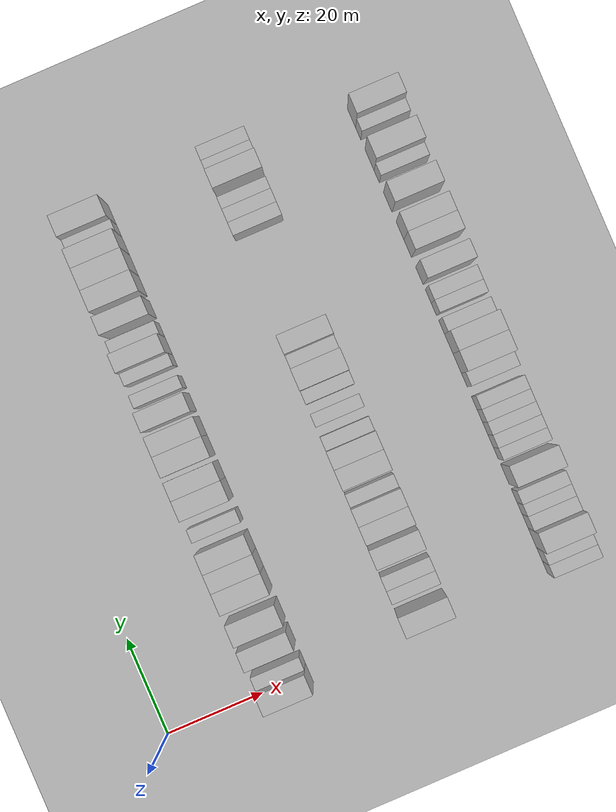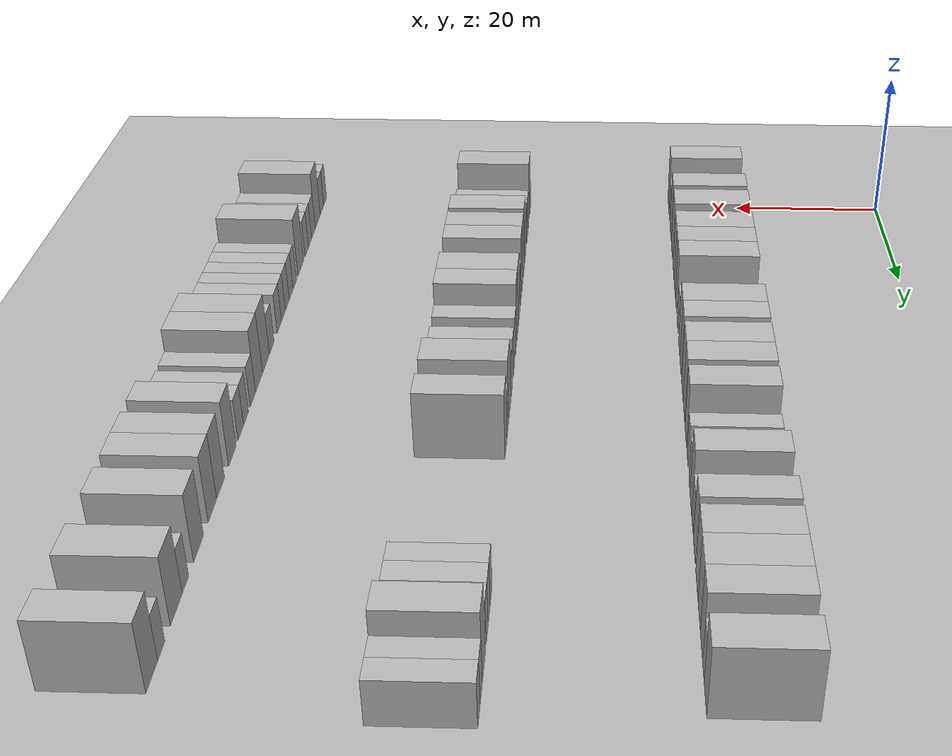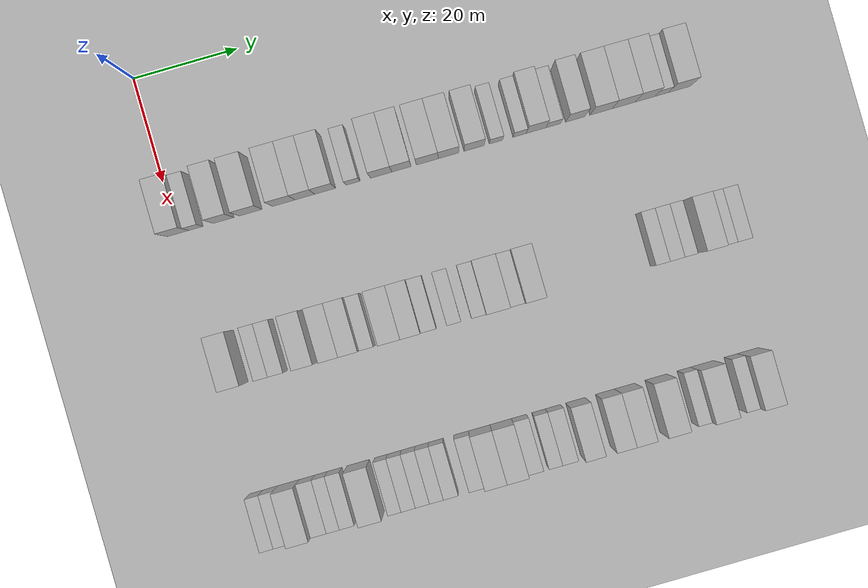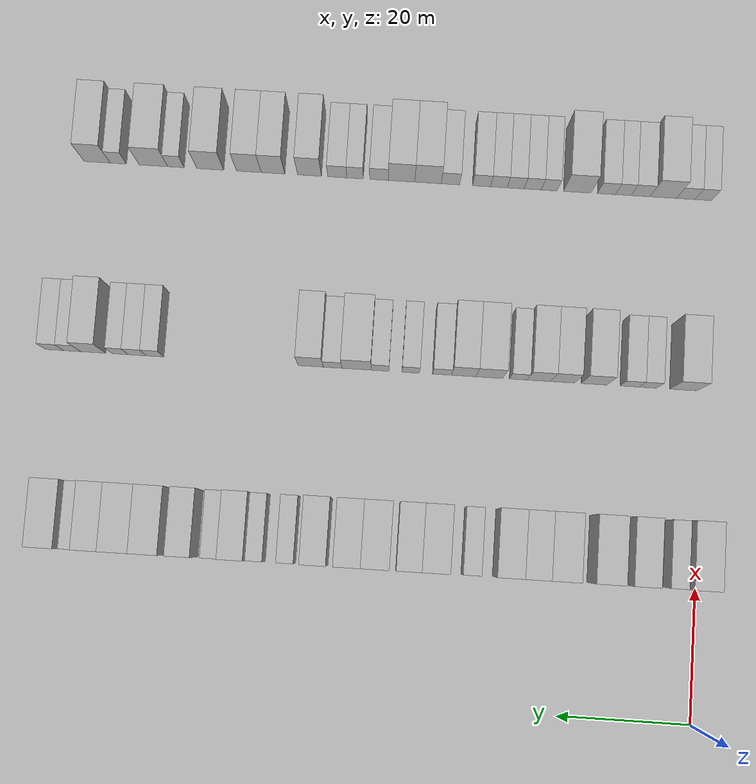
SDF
<sdf version="1.6">
 <world name="default">
  <include><name>ground_plane_1</name><uri>model://HANNAS_ground_plane</uri></include>
  <include>
   <name>ground_plane_2</name>
   <uri>model://HANNAS_ground_plane</uri>
   <pose>100 0 0  0 0 0</pose>
  </include>
  <model name="building_68">
   <static>1</static>
   <pose>25.0000 0.2181 0 0.000000 0.000000 0.000000</pose>
   <link name="link">
    <pose>0 0 4.50 0 0 0</pose>
    <collision name="collision"><geometry><box><size>10.0000 4.1541 9.0000</size></box></geometry></collision>
    <visual name="visual">
     <cast_shadows>0</cast_shadows>
     <geometry><box><size>10.0000 4.1541 9.0000</size></box></geometry>
     <material>
      <script>
       <uri>model://HANNAS_wall/materials/scripts</uri>
       <uri>model://HANNAS_wall/materials/textures</uri>
       <name>vrc/HANNAS_wall</name>
      </script>
     </material>
    </visual>
   </link>
  </model>
  <model name="building_69">
   <static>1</static>
   <pose>25.0000 3.6451 0 0.000000 0.000000 0.000000</pose>
   <link name="link">
    <pose>0 0 3.00 0 0 0</pose>
    <collision name="collision"><geometry><box><size>10.0000 2.6998 6.0000</size></box></geometry></collision>
    <visual name="visual">
     <cast_shadows>0</cast_shadows>
     <geometry><box><size>10.0000 2.6998 6.0000</size></box></geometry>
     <material>
      <script>
       <uri>model://HANNAS_wall/materials/scripts</uri>
       <uri>model://HANNAS_wall/materials/textures</uri>
       <name>vrc/HANNAS_wall</name>
      </script>
     </material>
    </visual>
   </link>
  </model>
  <model name="building_70">
   <static>1</static>
   <pose>25.0000 8.9769 0 0.000000 0.000000 0.000000</pose>
   <link name="link">
    <pose>0 0 4.50 0 0 0</pose>
    <collision name="collision"><geometry><box><size>10.0000 3.9638 9.0000</size></box></geometry></collision>
    <visual name="visual">
     <cast_shadows>0</cast_shadows>
     <geometry><box><size>10.0000 3.9638 9.0000</size></box></geometry>
     <material>
      <script>
       <uri>model://HANNAS_wall/materials/scripts</uri>
       <uri>model://HANNAS_wall/materials/textures</uri>
       <name>vrc/HANNAS_wall</name>
      </script>
     </material>
    </visual>
   </link>
  </model>
  <model name="building_71">
   <static>1</static>
   <pose>25.0000 14.1702 0 0.000000 0.000000 0.000000</pose>
   <link name="link">
    <pose>0 0 4.50 0 0 0</pose>
    <collision name="collision"><geometry><box><size>10.0000 4.4229 9.0000</size></box></geometry></collision>
    <visual name="visual">
     <cast_shadows>0</cast_shadows>
     <geometry><box><size>10.0000 4.4229 9.0000</size></box></geometry>
     <material>
      <script>
       <uri>model://HANNAS_wall/materials/scripts</uri>
       <uri>model://HANNAS_wall/materials/textures</uri>
       <name>vrc/HANNAS_wall</name>
      </script>
     </material>
    </visual>
   </link>
  </model>
  <model name="building_72">
   <static>1</static>
   <pose>25.0000 20.5548 0 0.000000 0.000000 0.000000</pose>
   <link name="link">
    <pose>0 0 4.50 0 0 0</pose>
    <collision name="collision"><geometry><box><size>10.0000 4.3463 9.0000</size></box></geometry></collision>
    <visual name="visual">
     <cast_shadows>0</cast_shadows>
     <geometry><box><size>10.0000 4.3463 9.0000</size></box></geometry>
     <material>
      <script>
       <uri>model://HANNAS_wall/materials/scripts</uri>
       <uri>model://HANNAS_wall/materials/textures</uri>
       <name>vrc/HANNAS_wall</name>
      </script>
     </material>
    </visual>
   </link>
  </model>
  <model name="building_73">
   <static>1</static>
   <pose>25.0000 24.6365 0 0.000000 0.000000 0.000000</pose>
   <link name="link">
    <pose>0 0 4.50 0 0 0</pose>
    <collision name="collision"><geometry><box><size>10.0000 3.8170 9.0000</size></box></geometry></collision>
    <visual name="visual">
     <cast_shadows>0</cast_shadows>
     <geometry><box><size>10.0000 3.8170 9.0000</size></box></geometry>
     <material>
      <script>
       <uri>model://HANNAS_wall/materials/scripts</uri>
       <uri>model://HANNAS_wall/materials/textures</uri>
       <name>vrc/HANNAS_wall</name>
      </script>
     </material>
    </visual>
   </link>
  </model>
  <model name="building_74">
   <static>1</static>
   <pose>25.0000 28.5519 0 0.000000 0.000000 0.000000</pose>
   <link name="link">
    <pose>0 0 4.50 0 0 0</pose>
    <collision name="collision"><geometry><box><size>10.0000 4.0139 9.0000</size></box></geometry></collision>
    <visual name="visual">
     <cast_shadows>0</cast_shadows>
     <geometry><box><size>10.0000 4.0139 9.0000</size></box></geometry>
     <material>
      <script>
       <uri>model://HANNAS_wall/materials/scripts</uri>
       <uri>model://HANNAS_wall/materials/textures</uri>
       <name>vrc/HANNAS_wall</name>
      </script>
     </material>
    </visual>
   </link>
  </model>
  <model name="building_75">
   <static>1</static>
   <pose>25.0000 33.9201 0 0.000000 0.000000 0.000000</pose>
   <link name="link">
    <pose>0 0 3.00 0 0 0</pose>
    <collision name="collision"><geometry><box><size>10.0000 2.7224 6.0000</size></box></geometry></collision>
    <visual name="visual">
     <cast_shadows>0</cast_shadows>
     <geometry><box><size>10.0000 2.7224 6.0000</size></box></geometry>
     <material>
      <script>
       <uri>model://HANNAS_wall/materials/scripts</uri>
       <uri>model://HANNAS_wall/materials/textures</uri>
       <name>vrc/HANNAS_wall</name>
      </script>
     </material>
    </visual>
   </link>
  </model>
  <model name="building_76">
   <static>1</static>
   <pose>25.0000 39.3360 0 0.000000 0.000000 0.000000</pose>
   <link name="link">
    <pose>0 0 4.50 0 0 0</pose>
    <collision name="collision"><geometry><box><size>10.0000 4.1094 9.0000</size></box></geometry></collision>
    <visual name="visual">
     <cast_shadows>0</cast_shadows>
     <geometry><box><size>10.0000 4.1094 9.0000</size></box></geometry>
     <material>
      <script>
       <uri>model://HANNAS_wall/materials/scripts</uri>
       <uri>model://HANNAS_wall/materials/textures</uri>
       <name>vrc/HANNAS_wall</name>
      </script>
     </material>
    </visual>
   </link>
  </model>
  <model name="building_77">
   <static>1</static>
   <pose>25.0000 43.2441 0 0.000000 0.000000 0.000000</pose>
   <link name="link">
    <pose>0 0 4.50 0 0 0</pose>
    <collision name="collision"><geometry><box><size>10.0000 3.7069 9.0000</size></box></geometry></collision>
    <visual name="visual">
     <cast_shadows>0</cast_shadows>
     <geometry><box><size>10.0000 3.7069 9.0000</size></box></geometry>
     <material>
      <script>
       <uri>model://HANNAS_wall/materials/scripts</uri>
       <uri>model://HANNAS_wall/materials/textures</uri>
       <name>vrc/HANNAS_wall</name>
      </script>
     </material>
    </visual>
   </link>
  </model>
  <model name="building_78">
   <static>1</static>
   <pose>25.0000 48.1934 0 0.000000 0.000000 0.000000</pose>
   <link name="link">
    <pose>0 0 4.50 0 0 0</pose>
    <collision name="collision"><geometry><box><size>10.0000 4.1918 9.0000</size></box></geometry></collision>
    <visual name="visual">
     <cast_shadows>0</cast_shadows>
     <geometry><box><size>10.0000 4.1918 9.0000</size></box></geometry>
     <material>
      <script>
       <uri>model://HANNAS_wall/materials/scripts</uri>
       <uri>model://HANNAS_wall/materials/textures</uri>
       <name>vrc/HANNAS_wall</name>
      </script>
     </material>
    </visual>
   </link>
  </model>
  <model name="building_79">
   <static>1</static>
   <pose>25.0000 52.2779 0 0.000000 0.000000 0.000000</pose>
   <link name="link">
    <pose>0 0 4.50 0 0 0</pose>
    <collision name="collision"><geometry><box><size>10.0000 3.9772 9.0000</size></box></geometry></collision>
    <visual name="visual">
     <cast_shadows>0</cast_shadows>
     <geometry><box><size>10.0000 3.9772 9.0000</size></box></geometry>
     <material>
      <script>
       <uri>model://HANNAS_wall/materials/scripts</uri>
       <uri>model://HANNAS_wall/materials/textures</uri>
       <name>vrc/HANNAS_wall</name>
      </script>
     </material>
    </visual>
   </link>
  </model>
  <model name="building_80">
   <static>1</static>
   <pose>25.0000 57.2029 0 0.000000 0.000000 0.000000</pose>
   <link name="link">
    <pose>0 0 4.50 0 0 0</pose>
    <collision name="collision"><geometry><box><size>10.0000 3.8728 9.0000</size></box></geometry></collision>
    <visual name="visual">
     <cast_shadows>0</cast_shadows>
     <geometry><box><size>10.0000 3.8728 9.0000</size></box></geometry>
     <material>
      <script>
       <uri>model://HANNAS_wall/materials/scripts</uri>
       <uri>model://HANNAS_wall/materials/textures</uri>
       <name>vrc/HANNAS_wall</name>
      </script>
     </material>
    </visual>
   </link>
  </model>
  <model name="building_81">
   <static>1</static>
   <pose>25.0000 61.4220 0 0.000000 0.000000 0.000000</pose>
   <link name="link">
    <pose>0 0 3.00 0 0 0</pose>
    <collision name="collision"><geometry><box><size>10.0000 2.5654 6.0000</size></box></geometry></collision>
    <visual name="visual">
     <cast_shadows>0</cast_shadows>
     <geometry><box><size>10.0000 2.5654 6.0000</size></box></geometry>
     <material>
      <script>
       <uri>model://HANNAS_wall/materials/scripts</uri>
       <uri>model://HANNAS_wall/materials/textures</uri>
       <name>vrc/HANNAS_wall</name>
      </script>
     </material>
    </visual>
   </link>
  </model>
  <model name="building_82">
   <static>1</static>
   <pose>25.0000 65.9608 0 0.000000 0.000000 0.000000</pose>
   <link name="link">
    <pose>0 0 3.00 0 0 0</pose>
    <collision name="collision"><geometry><box><size>10.0000 2.5123 6.0000</size></box></geometry></collision>
    <visual name="visual">
     <cast_shadows>0</cast_shadows>
     <geometry><box><size>10.0000 2.5123 6.0000</size></box></geometry>
     <material>
      <script>
       <uri>model://HANNAS_wall/materials/scripts</uri>
       <uri>model://HANNAS_wall/materials/textures</uri>
       <name>vrc/HANNAS_wall</name>
      </script>
     </material>
    </visual>
   </link>
  </model>
  <model name="building_83">
   <static>1</static>
   <pose>25.0000 69.1077 0 0.000000 0.000000 0.000000</pose>
   <link name="link">
    <pose>0 0 4.50 0 0 0</pose>
    <collision name="collision"><geometry><box><size>10.0000 3.7815 9.0000</size></box></geometry></collision>
    <visual name="visual">
     <cast_shadows>0</cast_shadows>
     <geometry><box><size>10.0000 3.7815 9.0000</size></box></geometry>
     <material>
      <script>
       <uri>model://HANNAS_wall/materials/scripts</uri>
       <uri>model://HANNAS_wall/materials/textures</uri>
       <name>vrc/HANNAS_wall</name>
      </script>
     </material>
    </visual>
   </link>
  </model>
  <model name="building_84">
   <static>1</static>
   <pose>25.0000 72.4143 0 0.000000 0.000000 0.000000</pose>
   <link name="link">
    <pose>0 0 3.00 0 0 0</pose>
    <collision name="collision"><geometry><box><size>10.0000 2.8317 6.0000</size></box></geometry></collision>
    <visual name="visual">
     <cast_shadows>0</cast_shadows>
     <geometry><box><size>10.0000 2.8317 6.0000</size></box></geometry>
     <material>
      <script>
       <uri>model://HANNAS_wall/materials/scripts</uri>
       <uri>model://HANNAS_wall/materials/textures</uri>
       <name>vrc/HANNAS_wall</name>
      </script>
     </material>
    </visual>
   </link>
  </model>
  <model name="building_85">
   <static>1</static>
   <pose>25.0000 76.6720 0 0.000000 0.000000 0.000000</pose>
   <link name="link">
    <pose>0 0 4.50 0 0 0</pose>
    <collision name="collision"><geometry><box><size>10.0000 3.6837 9.0000</size></box></geometry></collision>
    <visual name="visual">
     <cast_shadows>0</cast_shadows>
     <geometry><box><size>10.0000 3.6837 9.0000</size></box></geometry>
     <material>
      <script>
       <uri>model://HANNAS_wall/materials/scripts</uri>
       <uri>model://HANNAS_wall/materials/textures</uri>
       <name>vrc/HANNAS_wall</name>
      </script>
     </material>
    </visual>
   </link>
  </model>
  <model name="building_86">
   <static>1</static>
   <pose>25.0000 81.6594 0 0.000000 0.000000 0.000000</pose>
   <link name="link">
    <pose>0 0 4.50 0 0 0</pose>
    <collision name="collision"><geometry><box><size>10.0000 4.2912 9.0000</size></box></geometry></collision>
    <visual name="visual">
     <cast_shadows>0</cast_shadows>
     <geometry><box><size>10.0000 4.2912 9.0000</size></box></geometry>
     <material>
      <script>
       <uri>model://HANNAS_wall/materials/scripts</uri>
       <uri>model://HANNAS_wall/materials/textures</uri>
       <name>vrc/HANNAS_wall</name>
      </script>
     </material>
    </visual>
   </link>
  </model>
  <model name="building_87">
   <static>1</static>
   <pose>25.0000 86.0242 0 0.000000 0.000000 0.000000</pose>
   <link name="link">
    <pose>0 0 4.50 0 0 0</pose>
    <collision name="collision"><geometry><box><size>10.0000 4.4383 9.0000</size></box></geometry></collision>
    <visual name="visual">
     <cast_shadows>0</cast_shadows>
     <geometry><box><size>10.0000 4.4383 9.0000</size></box></geometry>
     <material>
      <script>
       <uri>model://HANNAS_wall/materials/scripts</uri>
       <uri>model://HANNAS_wall/materials/textures</uri>
       <name>vrc/HANNAS_wall</name>
      </script>
     </material>
    </visual>
   </link>
  </model>
  <model name="building_88">
   <static>1</static>
   <pose>25.0000 90.1643 0 0.000000 0.000000 0.000000</pose>
   <link name="link">
    <pose>0 0 4.50 0 0 0</pose>
    <collision name="collision"><geometry><box><size>10.0000 3.8419 9.0000</size></box></geometry></collision>
    <visual name="visual">
     <cast_shadows>0</cast_shadows>
     <geometry><box><size>10.0000 3.8419 9.0000</size></box></geometry>
     <material>
      <script>
       <uri>model://HANNAS_wall/materials/scripts</uri>
       <uri>model://HANNAS_wall/materials/textures</uri>
       <name>vrc/HANNAS_wall</name>
      </script>
     </material>
    </visual>
   </link>
  </model>
  <model name="building_89">
   <static>1</static>
   <pose>25.0000 93.3445 0 0.000000 0.000000 0.000000</pose>
   <link name="link">
    <pose>0 0 3.00 0 0 0</pose>
    <collision name="collision"><geometry><box><size>10.0000 2.5184 6.0000</size></box></geometry></collision>
    <visual name="visual">
     <cast_shadows>0</cast_shadows>
     <geometry><box><size>10.0000 2.5184 6.0000</size></box></geometry>
     <material>
      <script>
       <uri>model://HANNAS_wall/materials/scripts</uri>
       <uri>model://HANNAS_wall/materials/textures</uri>
       <name>vrc/HANNAS_wall</name>
      </script>
     </material>
    </visual>
   </link>
  </model>
  <model name="building_90">
   <static>1</static>
   <pose>25.0000 96.7412 0 0.000000 0.000000 0.000000</pose>
   <link name="link">
    <pose>0 0 4.50 0 0 0</pose>
    <collision name="collision"><geometry><box><size>10.0000 4.2751 9.0000</size></box></geometry></collision>
    <visual name="visual">
     <cast_shadows>0</cast_shadows>
     <geometry><box><size>10.0000 4.2751 9.0000</size></box></geometry>
     <material>
      <script>
       <uri>model://HANNAS_wall/materials/scripts</uri>
       <uri>model://HANNAS_wall/materials/textures</uri>
       <name>vrc/HANNAS_wall</name>
      </script>
     </material>
    </visual>
   </link>
  </model>
  <model name="building_213">
   <static>1</static>
   <pose>55.0000 2.9853 0 0.000000 0.000000 0.000000</pose>
   <link name="link">
    <pose>0 0 4.50 0 0 0</pose>
    <collision name="collision"><geometry><box><size>10.0000 4.1522 9.0000</size></box></geometry></collision>
    <visual name="visual">
     <cast_shadows>0</cast_shadows>
     <geometry><box><size>10.0000 4.1522 9.0000</size></box></geometry>
     <material>
      <script>
       <uri>model://HANNAS_wall/materials/scripts</uri>
       <uri>model://HANNAS_wall/materials/textures</uri>
       <name>vrc/HANNAS_wall</name>
      </script>
     </material>
    </visual>
   </link>
  </model>
  <model name="building_214">
   <static>1</static>
   <pose>55.0000 8.4114 0 0.000000 0.000000 0.000000</pose>
   <link name="link">
    <pose>0 0 3.00 0 0 0</pose>
    <collision name="collision"><geometry><box><size>10.0000 2.7000 6.0000</size></box></geometry></collision>
    <visual name="visual">
     <cast_shadows>0</cast_shadows>
     <geometry><box><size>10.0000 2.7000 6.0000</size></box></geometry>
     <material>
      <script>
       <uri>model://HANNAS_wall/materials/scripts</uri>
       <uri>model://HANNAS_wall/materials/textures</uri>
       <name>vrc/HANNAS_wall</name>
      </script>
     </material>
    </visual>
   </link>
  </model>
  <model name="building_215">
   <static>1</static>
   <pose>55.0000 11.2016 0 0.000000 0.000000 0.000000</pose>
   <link name="link">
    <pose>0 0 3.00 0 0 0</pose>
    <collision name="collision"><geometry><box><size>10.0000 2.8804 6.0000</size></box></geometry></collision>
    <visual name="visual">
     <cast_shadows>0</cast_shadows>
     <geometry><box><size>10.0000 2.8804 6.0000</size></box></geometry>
     <material>
      <script>
       <uri>model://HANNAS_wall/materials/scripts</uri>
       <uri>model://HANNAS_wall/materials/textures</uri>
       <name>vrc/HANNAS_wall</name>
      </script>
     </material>
    </visual>
   </link>
  </model>
  <model name="building_216">
   <static>1</static>
   <pose>55.0000 16.6097 0 0.000000 0.000000 0.000000</pose>
   <link name="link">
    <pose>0 0 4.50 0 0 0</pose>
    <collision name="collision"><geometry><box><size>10.0000 3.9358 9.0000</size></box></geometry></collision>
    <visual name="visual">
     <cast_shadows>0</cast_shadows>
     <geometry><box><size>10.0000 3.9358 9.0000</size></box></geometry>
     <material>
      <script>
       <uri>model://HANNAS_wall/materials/scripts</uri>
       <uri>model://HANNAS_wall/materials/textures</uri>
       <name>vrc/HANNAS_wall</name>
      </script>
     </material>
    </visual>
   </link>
  </model>
  <model name="building_217">
   <static>1</static>
   <pose>55.0000 21.4255 0 0.000000 0.000000 0.000000</pose>
   <link name="link">
    <pose>0 0 4.50 0 0 0</pose>
    <collision name="collision"><geometry><box><size>10.0000 3.6958 9.0000</size></box></geometry></collision>
    <visual name="visual">
     <cast_shadows>0</cast_shadows>
     <geometry><box><size>10.0000 3.6958 9.0000</size></box></geometry>
     <material>
      <script>
       <uri>model://HANNAS_wall/materials/scripts</uri>
       <uri>model://HANNAS_wall/materials/textures</uri>
       <name>vrc/HANNAS_wall</name>
      </script>
     </material>
    </visual>
   </link>
  </model>
  <model name="building_218">
   <static>1</static>
   <pose>55.0000 25.0774 0 0.000000 0.000000 0.000000</pose>
   <link name="link">
    <pose>0 0 4.50 0 0 0</pose>
    <collision name="collision"><geometry><box><size>10.0000 3.6080 9.0000</size></box></geometry></collision>
    <visual name="visual">
     <cast_shadows>0</cast_shadows>
     <geometry><box><size>10.0000 3.6080 9.0000</size></box></geometry>
     <material>
      <script>
       <uri>model://HANNAS_wall/materials/scripts</uri>
       <uri>model://HANNAS_wall/materials/textures</uri>
       <name>vrc/HANNAS_wall</name>
      </script>
     </material>
    </visual>
   </link>
  </model>
  <model name="building_219">
   <static>1</static>
   <pose>55.0000 28.2275 0 0.000000 0.000000 0.000000</pose>
   <link name="link">
    <pose>0 0 3.00 0 0 0</pose>
    <collision name="collision"><geometry><box><size>10.0000 2.6922 6.0000</size></box></geometry></collision>
    <visual name="visual">
     <cast_shadows>0</cast_shadows>
     <geometry><box><size>10.0000 2.6922 6.0000</size></box></geometry>
     <material>
      <script>
       <uri>model://HANNAS_wall/materials/scripts</uri>
       <uri>model://HANNAS_wall/materials/textures</uri>
       <name>vrc/HANNAS_wall</name>
      </script>
     </material>
    </visual>
   </link>
  </model>
  <model name="building_220">
   <static>1</static>
   <pose>55.0000 32.6514 0 0.000000 0.000000 0.000000</pose>
   <link name="link">
    <pose>0 0 4.50 0 0 0</pose>
    <collision name="collision"><geometry><box><size>10.0000 4.1556 9.0000</size></box></geometry></collision>
    <visual name="visual">
     <cast_shadows>0</cast_shadows>
     <geometry><box><size>10.0000 4.1556 9.0000</size></box></geometry>
     <material>
      <script>
       <uri>model://HANNAS_wall/materials/scripts</uri>
       <uri>model://HANNAS_wall/materials/textures</uri>
       <name>vrc/HANNAS_wall</name>
      </script>
     </material>
    </visual>
   </link>
  </model>
  <model name="building_221">
   <static>1</static>
   <pose>55.0000 36.5901 0 0.000000 0.000000 0.000000</pose>
   <link name="link">
    <pose>0 0 4.50 0 0 0</pose>
    <collision name="collision"><geometry><box><size>10.0000 3.7217 9.0000</size></box></geometry></collision>
    <visual name="visual">
     <cast_shadows>0</cast_shadows>
     <geometry><box><size>10.0000 3.7217 9.0000</size></box></geometry>
     <material>
      <script>
       <uri>model://HANNAS_wall/materials/scripts</uri>
       <uri>model://HANNAS_wall/materials/textures</uri>
       <name>vrc/HANNAS_wall</name>
      </script>
     </material>
    </visual>
   </link>
  </model>
  <model name="building_222">
   <static>1</static>
   <pose>55.0000 39.8987 0 0.000000 0.000000 0.000000</pose>
   <link name="link">
    <pose>0 0 3.00 0 0 0</pose>
    <collision name="collision"><geometry><box><size>10.0000 2.8956 6.0000</size></box></geometry></collision>
    <visual name="visual">
     <cast_shadows>0</cast_shadows>
     <geometry><box><size>10.0000 2.8956 6.0000</size></box></geometry>
     <material>
      <script>
       <uri>model://HANNAS_wall/materials/scripts</uri>
       <uri>model://HANNAS_wall/materials/textures</uri>
       <name>vrc/HANNAS_wall</name>
      </script>
     </material>
    </visual>
   </link>
  </model>
  <model name="building_223">
   <static>1</static>
   <pose>55.0000 44.6796 0 0.000000 0.000000 0.000000</pose>
   <link name="link">
    <pose>0 0 3.00 0 0 0</pose>
    <collision name="collision"><geometry><box><size>10.0000 2.6662 6.0000</size></box></geometry></collision>
    <visual name="visual">
     <cast_shadows>0</cast_shadows>
     <geometry><box><size>10.0000 2.6662 6.0000</size></box></geometry>
     <material>
      <script>
       <uri>model://HANNAS_wall/materials/scripts</uri>
       <uri>model://HANNAS_wall/materials/textures</uri>
       <name>vrc/HANNAS_wall</name>
      </script>
     </material>
    </visual>
   </link>
  </model>
  <model name="building_224">
   <static>1</static>
   <pose>55.0000 49.3647 0 0.000000 0.000000 0.000000</pose>
   <link name="link">
    <pose>0 0 3.00 0 0 0</pose>
    <collision name="collision"><geometry><box><size>10.0000 2.7040 6.0000</size></box></geometry></collision>
    <visual name="visual">
     <cast_shadows>0</cast_shadows>
     <geometry><box><size>10.0000 2.7040 6.0000</size></box></geometry>
     <material>
      <script>
       <uri>model://HANNAS_wall/materials/scripts</uri>
       <uri>model://HANNAS_wall/materials/textures</uri>
       <name>vrc/HANNAS_wall</name>
      </script>
     </material>
    </visual>
   </link>
  </model>
  <model name="building_225">
   <static>1</static>
   <pose>55.0000 52.9493 0 0.000000 0.000000 0.000000</pose>
   <link name="link">
    <pose>0 0 4.50 0 0 0</pose>
    <collision name="collision"><geometry><box><size>10.0000 4.4651 9.0000</size></box></geometry></collision>
    <visual name="visual">
     <cast_shadows>0</cast_shadows>
     <geometry><box><size>10.0000 4.4651 9.0000</size></box></geometry>
     <material>
      <script>
       <uri>model://HANNAS_wall/materials/scripts</uri>
       <uri>model://HANNAS_wall/materials/textures</uri>
       <name>vrc/HANNAS_wall</name>
      </script>
     </material>
    </visual>
   </link>
  </model>
  <model name="building_226">
   <static>1</static>
   <pose>55.0000 56.6074 0 0.000000 0.000000 0.000000</pose>
   <link name="link">
    <pose>0 0 3.00 0 0 0</pose>
    <collision name="collision"><geometry><box><size>10.0000 2.8513 6.0000</size></box></geometry></collision>
    <visual name="visual">
     <cast_shadows>0</cast_shadows>
     <geometry><box><size>10.0000 2.8513 6.0000</size></box></geometry>
     <material>
      <script>
       <uri>model://HANNAS_wall/materials/scripts</uri>
       <uri>model://HANNAS_wall/materials/textures</uri>
       <name>vrc/HANNAS_wall</name>
      </script>
     </material>
    </visual>
   </link>
  </model>
  <model name="building_227">
   <static>1</static>
   <pose>55.0000 59.9579 0 0.000000 0.000000 0.000000</pose>
   <link name="link">
    <pose>0 0 4.50 0 0 0</pose>
    <collision name="collision"><geometry><box><size>10.0000 3.8497 9.0000</size></box></geometry></collision>
    <visual name="visual">
     <cast_shadows>0</cast_shadows>
     <geometry><box><size>10.0000 3.8497 9.0000</size></box></geometry>
     <material>
      <script>
       <uri>model://HANNAS_wall/materials/scripts</uri>
       <uri>model://HANNAS_wall/materials/textures</uri>
       <name>vrc/HANNAS_wall</name>
      </script>
     </material>
    </visual>
   </link>
  </model>
  <model name="building_228">
   <static>1</static>
   <pose>55.0000 83.9017 0 0.000000 0.000000 0.000000</pose>
   <link name="link">
    <pose>0 0 3.00 0 0 0</pose>
    <collision name="collision"><geometry><box><size>10.0000 2.6793 6.0000</size></box></geometry></collision>
    <visual name="visual">
     <cast_shadows>0</cast_shadows>
     <geometry><box><size>10.0000 2.6793 6.0000</size></box></geometry>
     <material>
      <script>
       <uri>model://HANNAS_wall/materials/scripts</uri>
       <uri>model://HANNAS_wall/materials/textures</uri>
       <name>vrc/HANNAS_wall</name>
      </script>
     </material>
    </visual>
   </link>
  </model>
  <model name="building_229">
   <static>1</static>
   <pose>55.0000 86.6221 0 0.000000 0.000000 0.000000</pose>
   <link name="link">
    <pose>0 0 3.00 0 0 0</pose>
    <collision name="collision"><geometry><box><size>10.0000 2.7615 6.0000</size></box></geometry></collision>
    <visual name="visual">
     <cast_shadows>0</cast_shadows>
     <geometry><box><size>10.0000 2.7615 6.0000</size></box></geometry>
     <material>
      <script>
       <uri>model://HANNAS_wall/materials/scripts</uri>
       <uri>model://HANNAS_wall/materials/textures</uri>
       <name>vrc/HANNAS_wall</name>
      </script>
     </material>
    </visual>
   </link>
  </model>
  <model name="building_230">
   <static>1</static>
   <pose>55.0000 89.2274 0 0.000000 0.000000 0.000000</pose>
   <link name="link">
    <pose>0 0 3.00 0 0 0</pose>
    <collision name="collision"><geometry><box><size>10.0000 2.4490 6.0000</size></box></geometry></collision>
    <visual name="visual">
     <cast_shadows>0</cast_shadows>
     <geometry><box><size>10.0000 2.4490 6.0000</size></box></geometry>
     <material>
      <script>
       <uri>model://HANNAS_wall/materials/scripts</uri>
       <uri>model://HANNAS_wall/materials/textures</uri>
       <name>vrc/HANNAS_wall</name>
      </script>
     </material>
    </visual>
   </link>
  </model>
  <model name="building_231">
   <static>1</static>
   <pose>55.0000 93.3750 0 0.000000 0.000000 0.000000</pose>
   <link name="link">
    <pose>0 0 4.50 0 0 0</pose>
    <collision name="collision"><geometry><box><size>10.0000 3.8463 9.0000</size></box></geometry></collision>
    <visual name="visual">
     <cast_shadows>0</cast_shadows>
     <geometry><box><size>10.0000 3.8463 9.0000</size></box></geometry>
     <material>
      <script>
       <uri>model://HANNAS_wall/materials/scripts</uri>
       <uri>model://HANNAS_wall/materials/textures</uri>
       <name>vrc/HANNAS_wall</name>
      </script>
     </material>
    </visual>
   </link>
  </model>
  <model name="building_232">
   <static>1</static>
   <pose>55.0000 96.6147 0 0.000000 0.000000 0.000000</pose>
   <link name="link">
    <pose>0 0 3.00 0 0 0</pose>
    <collision name="collision"><geometry><box><size>10.0000 2.6330 6.0000</size></box></geometry></collision>
    <visual name="visual">
     <cast_shadows>0</cast_shadows>
     <geometry><box><size>10.0000 2.6330 6.0000</size></box></geometry>
     <material>
      <script>
       <uri>model://HANNAS_wall/materials/scripts</uri>
       <uri>model://HANNAS_wall/materials/textures</uri>
       <name>vrc/HANNAS_wall</name>
      </script>
     </material>
    </visual>
   </link>
  </model>
  <model name="building_233">
   <static>1</static>
   <pose>55.0000 99.3181 0 0.000000 0.000000 0.000000</pose>
   <link name="link">
    <pose>0 0 3.00 0 0 0</pose>
    <collision name="collision"><geometry><box><size>10.0000 2.7739 6.0000</size></box></geometry></collision>
    <visual name="visual">
     <cast_shadows>0</cast_shadows>
     <geometry><box><size>10.0000 2.7739 6.0000</size></box></geometry>
     <material>
      <script>
       <uri>model://HANNAS_wall/materials/scripts</uri>
       <uri>model://HANNAS_wall/materials/textures</uri>
       <name>vrc/HANNAS_wall</name>
      </script>
     </material>
    </visual>
   </link>
  </model>
  <model name="building_352">
   <static>1</static>
   <pose>85.0000 0.8902 0 0.000000 0.000000 0.000000</pose>
   <link name="link">
    <pose>0 0 3.00 0 0 0</pose>
    <collision name="collision"><geometry><box><size>10.0000 2.5922 6.0000</size></box></geometry></collision>
    <visual name="visual">
     <cast_shadows>0</cast_shadows>
     <geometry><box><size>10.0000 2.5922 6.0000</size></box></geometry>
     <material>
      <script>
       <uri>model://HANNAS_wall/materials/scripts</uri>
       <uri>model://HANNAS_wall/materials/textures</uri>
       <name>vrc/HANNAS_wall</name>
      </script>
     </material>
    </visual>
   </link>
  </model>
  <model name="building_353">
   <static>1</static>
   <pose>85.0000 3.6080 0 0.000000 0.000000 0.000000</pose>
   <link name="link">
    <pose>0 0 3.00 0 0 0</pose>
    <collision name="collision"><geometry><box><size>10.0000 2.8434 6.0000</size></box></geometry></collision>
    <visual name="visual">
     <cast_shadows>0</cast_shadows>
     <geometry><box><size>10.0000 2.8434 6.0000</size></box></geometry>
     <material>
      <script>
       <uri>model://HANNAS_wall/materials/scripts</uri>
       <uri>model://HANNAS_wall/materials/textures</uri>
       <name>vrc/HANNAS_wall</name>
      </script>
     </material>
    </visual>
   </link>
  </model>
  <model name="building_354">
   <static>1</static>
   <pose>85.0000 7.1067 0 0.000000 0.000000 0.000000</pose>
   <link name="link">
    <pose>0 0 4.50 0 0 0</pose>
    <collision name="collision"><geometry><box><size>10.0000 4.1541 9.0000</size></box></geometry></collision>
    <visual name="visual">
     <cast_shadows>0</cast_shadows>
     <geometry><box><size>10.0000 4.1541 9.0000</size></box></geometry>
     <material>
      <script>
       <uri>model://HANNAS_wall/materials/scripts</uri>
       <uri>model://HANNAS_wall/materials/textures</uri>
       <name>vrc/HANNAS_wall</name>
      </script>
     </material>
    </visual>
   </link>
  </model>
  <model name="building_355">
   <static>1</static>
   <pose>85.0000 10.6633 0 0.000000 0.000000 0.000000</pose>
   <link name="link">
    <pose>0 0 3.00 0 0 0</pose>
    <collision name="collision"><geometry><box><size>10.0000 2.9591 6.0000</size></box></geometry></collision>
    <visual name="visual">
     <cast_shadows>0</cast_shadows>
     <geometry><box><size>10.0000 2.9591 6.0000</size></box></geometry>
     <material>
      <script>
       <uri>model://HANNAS_wall/materials/scripts</uri>
       <uri>model://HANNAS_wall/materials/textures</uri>
       <name>vrc/HANNAS_wall</name>
      </script>
     </material>
    </visual>
   </link>
  </model>
  <model name="building_356">
   <static>1</static>
   <pose>85.0000 13.3669 0 0.000000 0.000000 0.000000</pose>
   <link name="link">
    <pose>0 0 3.00 0 0 0</pose>
    <collision name="collision"><geometry><box><size>10.0000 2.4480 6.0000</size></box></geometry></collision>
    <visual name="visual">
     <cast_shadows>0</cast_shadows>
     <geometry><box><size>10.0000 2.4480 6.0000</size></box></geometry>
     <material>
      <script>
       <uri>model://HANNAS_wall/materials/scripts</uri>
       <uri>model://HANNAS_wall/materials/textures</uri>
       <name>vrc/HANNAS_wall</name>
      </script>
     </material>
    </visual>
   </link>
  </model>
  <model name="building_357">
   <static>1</static>
   <pose>85.0000 15.9847 0 0.000000 0.000000 0.000000</pose>
   <link name="link">
    <pose>0 0 3.00 0 0 0</pose>
    <collision name="collision"><geometry><box><size>10.0000 2.7876 6.0000</size></box></geometry></collision>
    <visual name="visual">
     <cast_shadows>0</cast_shadows>
     <geometry><box><size>10.0000 2.7876 6.0000</size></box></geometry>
     <material>
      <script>
       <uri>model://HANNAS_wall/materials/scripts</uri>
       <uri>model://HANNAS_wall/materials/textures</uri>
       <name>vrc/HANNAS_wall</name>
      </script>
     </material>
    </visual>
   </link>
  </model>
  <model name="building_358">
   <static>1</static>
   <pose>85.0000 20.5278 0 0.000000 0.000000 0.000000</pose>
   <link name="link">
    <pose>0 0 4.50 0 0 0</pose>
    <collision name="collision"><geometry><box><size>10.0000 4.2984 9.0000</size></box></geometry></collision>
    <visual name="visual">
     <cast_shadows>0</cast_shadows>
     <geometry><box><size>10.0000 4.2984 9.0000</size></box></geometry>
     <material>
      <script>
       <uri>model://HANNAS_wall/materials/scripts</uri>
       <uri>model://HANNAS_wall/materials/textures</uri>
       <name>vrc/HANNAS_wall</name>
      </script>
     </material>
    </visual>
   </link>
  </model>
  <model name="building_359">
   <static>1</static>
   <pose>85.0000 24.9141 0 0.000000 0.000000 0.000000</pose>
   <link name="link">
    <pose>0 0 3.00 0 0 0</pose>
    <collision name="collision"><geometry><box><size>10.0000 2.4742 6.0000</size></box></geometry></collision>
    <visual name="visual">
     <cast_shadows>0</cast_shadows>
     <geometry><box><size>10.0000 2.4742 6.0000</size></box></geometry>
     <material>
      <script>
       <uri>model://HANNAS_wall/materials/scripts</uri>
       <uri>model://HANNAS_wall/materials/textures</uri>
       <name>vrc/HANNAS_wall</name>
      </script>
     </material>
    </visual>
   </link>
  </model>
  <model name="building_360">
   <static>1</static>
   <pose>85.0000 27.4932 0 0.000000 0.000000 0.000000</pose>
   <link name="link">
    <pose>0 0 3.00 0 0 0</pose>
    <collision name="collision"><geometry><box><size>10.0000 2.6841 6.0000</size></box></geometry></collision>
    <visual name="visual">
     <cast_shadows>0</cast_shadows>
     <geometry><box><size>10.0000 2.6841 6.0000</size></box></geometry>
     <material>
      <script>
       <uri>model://HANNAS_wall/materials/scripts</uri>
       <uri>model://HANNAS_wall/materials/textures</uri>
       <name>vrc/HANNAS_wall</name>
      </script>
     </material>
    </visual>
   </link>
  </model>
  <model name="building_361">
   <static>1</static>
   <pose>85.0000 30.1577 0 0.000000 0.000000 0.000000</pose>
   <link name="link">
    <pose>0 0 3.00 0 0 0</pose>
    <collision name="collision"><geometry><box><size>10.0000 2.6450 6.0000</size></box></geometry></collision>
    <visual name="visual">
     <cast_shadows>0</cast_shadows>
     <geometry><box><size>10.0000 2.6450 6.0000</size></box></geometry>
     <material>
      <script>
       <uri>model://HANNAS_wall/materials/scripts</uri>
       <uri>model://HANNAS_wall/materials/textures</uri>
       <name>vrc/HANNAS_wall</name>
      </script>
     </material>
    </visual>
   </link>
  </model>
  <model name="building_362">
   <static>1</static>
   <pose>85.0000 32.7808 0 0.000000 0.000000 0.000000</pose>
   <link name="link">
    <pose>0 0 3.00 0 0 0</pose>
    <collision name="collision"><geometry><box><size>10.0000 2.6013 6.0000</size></box></geometry></collision>
    <visual name="visual">
     <cast_shadows>0</cast_shadows>
     <geometry><box><size>10.0000 2.6013 6.0000</size></box></geometry>
     <material>
      <script>
       <uri>model://HANNAS_wall/materials/scripts</uri>
       <uri>model://HANNAS_wall/materials/textures</uri>
       <name>vrc/HANNAS_wall</name>
      </script>
     </material>
    </visual>
   </link>
  </model>
  <model name="building_363">
   <static>1</static>
   <pose>85.0000 35.4815 0 0.000000 0.000000 0.000000</pose>
   <link name="link">
    <pose>0 0 3.00 0 0 0</pose>
    <collision name="collision"><geometry><box><size>10.0000 2.7999 6.0000</size></box></geometry></collision>
    <visual name="visual">
     <cast_shadows>0</cast_shadows>
     <geometry><box><size>10.0000 2.7999 6.0000</size></box></geometry>
     <material>
      <script>
       <uri>model://HANNAS_wall/materials/scripts</uri>
       <uri>model://HANNAS_wall/materials/textures</uri>
       <name>vrc/HANNAS_wall</name>
      </script>
     </material>
    </visual>
   </link>
  </model>
  <model name="building_364">
   <static>1</static>
   <pose>85.0000 40.3174 0 0.000000 0.000000 0.000000</pose>
   <link name="link">
    <pose>0 0 3.00 0 0 0</pose>
    <collision name="collision"><geometry><box><size>10.0000 2.8719 6.0000</size></box></geometry></collision>
    <visual name="visual">
     <cast_shadows>0</cast_shadows>
     <geometry><box><size>10.0000 2.8719 6.0000</size></box></geometry>
     <material>
      <script>
       <uri>model://HANNAS_wall/materials/scripts</uri>
       <uri>model://HANNAS_wall/materials/textures</uri>
       <name>vrc/HANNAS_wall</name>
      </script>
     </material>
    </visual>
   </link>
  </model>
  <model name="building_365">
   <static>1</static>
   <pose>85.0000 43.8168 0 0.000000 0.000000 0.000000</pose>
   <link name="link">
    <pose>0 0 4.50 0 0 0</pose>
    <collision name="collision"><geometry><box><size>10.0000 4.1270 9.0000</size></box></geometry></collision>
    <visual name="visual">
     <cast_shadows>0</cast_shadows>
     <geometry><box><size>10.0000 4.1270 9.0000</size></box></geometry>
     <material>
      <script>
       <uri>model://HANNAS_wall/materials/scripts</uri>
       <uri>model://HANNAS_wall/materials/textures</uri>
       <name>vrc/HANNAS_wall</name>
      </script>
     </material>
    </visual>
   </link>
  </model>
  <model name="building_366">
   <static>1</static>
   <pose>85.0000 47.9364 0 0.000000 0.000000 0.000000</pose>
   <link name="link">
    <pose>0 0 4.50 0 0 0</pose>
    <collision name="collision"><geometry><box><size>10.0000 4.1122 9.0000</size></box></geometry></collision>
    <visual name="visual">
     <cast_shadows>0</cast_shadows>
     <geometry><box><size>10.0000 4.1122 9.0000</size></box></geometry>
     <material>
      <script>
       <uri>model://HANNAS_wall/materials/scripts</uri>
       <uri>model://HANNAS_wall/materials/textures</uri>
       <name>vrc/HANNAS_wall</name>
      </script>
     </material>
    </visual>
   </link>
  </model>
  <model name="building_367">
   <static>1</static>
   <pose>85.0000 51.4528 0 0.000000 0.000000 0.000000</pose>
   <link name="link">
    <pose>0 0 3.00 0 0 0</pose>
    <collision name="collision"><geometry><box><size>10.0000 2.9205 6.0000</size></box></geometry></collision>
    <visual name="visual">
     <cast_shadows>0</cast_shadows>
     <geometry><box><size>10.0000 2.9205 6.0000</size></box></geometry>
     <material>
      <script>
       <uri>model://HANNAS_wall/materials/scripts</uri>
       <uri>model://HANNAS_wall/materials/textures</uri>
       <name>vrc/HANNAS_wall</name>
      </script>
     </material>
    </visual>
   </link>
  </model>
  <model name="building_368">
   <static>1</static>
   <pose>85.0000 55.2009 0 0.000000 0.000000 0.000000</pose>
   <link name="link">
    <pose>0 0 3.00 0 0 0</pose>
    <collision name="collision"><geometry><box><size>10.0000 2.5758 6.0000</size></box></geometry></collision>
    <visual name="visual">
     <cast_shadows>0</cast_shadows>
     <geometry><box><size>10.0000 2.5758 6.0000</size></box></geometry>
     <material>
      <script>
       <uri>model://HANNAS_wall/materials/scripts</uri>
       <uri>model://HANNAS_wall/materials/textures</uri>
       <name>vrc/HANNAS_wall</name>
      </script>
     </material>
    </visual>
   </link>
  </model>
  <model name="building_369">
   <static>1</static>
   <pose>85.0000 57.9734 0 0.000000 0.000000 0.000000</pose>
   <link name="link">
    <pose>0 0 3.00 0 0 0</pose>
    <collision name="collision"><geometry><box><size>10.0000 2.9692 6.0000</size></box></geometry></collision>
    <visual name="visual">
     <cast_shadows>0</cast_shadows>
     <geometry><box><size>10.0000 2.9692 6.0000</size></box></geometry>
     <material>
      <script>
       <uri>model://HANNAS_wall/materials/scripts</uri>
       <uri>model://HANNAS_wall/materials/textures</uri>
       <name>vrc/HANNAS_wall</name>
      </script>
     </material>
    </visual>
   </link>
  </model>
  <model name="building_370">
   <static>1</static>
   <pose>85.0000 62.3236 0 0.000000 0.000000 0.000000</pose>
   <link name="link">
    <pose>0 0 4.50 0 0 0</pose>
    <collision name="collision"><geometry><box><size>10.0000 3.7311 9.0000</size></box></geometry></collision>
    <visual name="visual">
     <cast_shadows>0</cast_shadows>
     <geometry><box><size>10.0000 3.7311 9.0000</size></box></geometry>
     <material>
      <script>
       <uri>model://HANNAS_wall/materials/scripts</uri>
       <uri>model://HANNAS_wall/materials/textures</uri>
       <name>vrc/HANNAS_wall</name>
      </script>
     </material>
    </visual>
   </link>
  </model>
  <model name="building_371">
   <static>1</static>
   <pose>85.0000 68.0315 0 0.000000 0.000000 0.000000</pose>
   <link name="link">
    <pose>0 0 4.50 0 0 0</pose>
    <collision name="collision"><geometry><box><size>10.0000 3.6848 9.0000</size></box></geometry></collision>
    <visual name="visual">
     <cast_shadows>0</cast_shadows>
     <geometry><box><size>10.0000 3.6848 9.0000</size></box></geometry>
     <material>
      <script>
       <uri>model://HANNAS_wall/materials/scripts</uri>
       <uri>model://HANNAS_wall/materials/textures</uri>
       <name>vrc/HANNAS_wall</name>
      </script>
     </material>
    </visual>
   </link>
  </model>
  <model name="building_372">
   <static>1</static>
   <pose>85.0000 71.8072 0 0.000000 0.000000 0.000000</pose>
   <link name="link">
    <pose>0 0 4.50 0 0 0</pose>
    <collision name="collision"><geometry><box><size>10.0000 3.8666 9.0000</size></box></geometry></collision>
    <visual name="visual">
     <cast_shadows>0</cast_shadows>
     <geometry><box><size>10.0000 3.8666 9.0000</size></box></geometry>
     <material>
      <script>
       <uri>model://HANNAS_wall/materials/scripts</uri>
       <uri>model://HANNAS_wall/materials/textures</uri>
       <name>vrc/HANNAS_wall</name>
      </script>
     </material>
    </visual>
   </link>
  </model>
  <model name="building_373">
   <static>1</static>
   <pose>85.0000 77.8383 0 0.000000 0.000000 0.000000</pose>
   <link name="link">
    <pose>0 0 4.50 0 0 0</pose>
    <collision name="collision"><geometry><box><size>10.0000 4.1956 9.0000</size></box></geometry></collision>
    <visual name="visual">
     <cast_shadows>0</cast_shadows>
     <geometry><box><size>10.0000 4.1956 9.0000</size></box></geometry>
     <material>
      <script>
       <uri>model://HANNAS_wall/materials/scripts</uri>
       <uri>model://HANNAS_wall/materials/textures</uri>
       <name>vrc/HANNAS_wall</name>
      </script>
     </material>
    </visual>
   </link>
  </model>
  <model name="building_374">
   <static>1</static>
   <pose>85.0000 83.2174 0 0.000000 0.000000 0.000000</pose>
   <link name="link">
    <pose>0 0 3.00 0 0 0</pose>
    <collision name="collision"><geometry><box><size>10.0000 2.5627 6.0000</size></box></geometry></collision>
    <visual name="visual">
     <cast_shadows>0</cast_shadows>
     <geometry><box><size>10.0000 2.5627 6.0000</size></box></geometry>
     <material>
      <script>
       <uri>model://HANNAS_wall/materials/scripts</uri>
       <uri>model://HANNAS_wall/materials/textures</uri>
       <name>vrc/HANNAS_wall</name>
      </script>
     </material>
    </visual>
   </link>
  </model>
  <model name="building_375">
   <static>1</static>
   <pose>85.0000 86.7394 0 0.000000 0.000000 0.000000</pose>
   <link name="link">
    <pose>0 0 4.50 0 0 0</pose>
    <collision name="collision"><geometry><box><size>10.0000 4.4812 9.0000</size></box></geometry></collision>
    <visual name="visual">
     <cast_shadows>0</cast_shadows>
     <geometry><box><size>10.0000 4.4812 9.0000</size></box></geometry>
     <material>
      <script>
       <uri>model://HANNAS_wall/materials/scripts</uri>
       <uri>model://HANNAS_wall/materials/textures</uri>
       <name>vrc/HANNAS_wall</name>
      </script>
     </material>
    </visual>
   </link>
  </model>
  <model name="building_376">
   <static>1</static>
   <pose>85.0000 92.2502 0 0.000000 0.000000 0.000000</pose>
   <link name="link">
    <pose>0 0 3.00 0 0 0</pose>
    <collision name="collision"><geometry><box><size>10.0000 2.5405 6.0000</size></box></geometry></collision>
    <visual name="visual">
     <cast_shadows>0</cast_shadows>
     <geometry><box><size>10.0000 2.5405 6.0000</size></box></geometry>
     <material>
      <script>
       <uri>model://HANNAS_wall/materials/scripts</uri>
       <uri>model://HANNAS_wall/materials/textures</uri>
       <name>vrc/HANNAS_wall</name>
      </script>
     </material>
    </visual>
   </link>
  </model>
  <model name="building_377">
   <static>1</static>
   <pose>85.0000 95.5473 0 0.000000 0.000000 0.000000</pose>
   <link name="link">
    <pose>0 0 4.50 0 0 0</pose>
    <collision name="collision"><geometry><box><size>10.0000 4.0537 9.0000</size></box></geometry></collision>
    <visual name="visual">
     <cast_shadows>0</cast_shadows>
     <geometry><box><size>10.0000 4.0537 9.0000</size></box></geometry>
     <material>
      <script>
       <uri>model://HANNAS_wall/materials/scripts</uri>
       <uri>model://HANNAS_wall/materials/textures</uri>
       <name>vrc/HANNAS_wall</name>
      </script>
     </material>
    </visual>
   </link>
  </model>
 </world>
</sdf>
